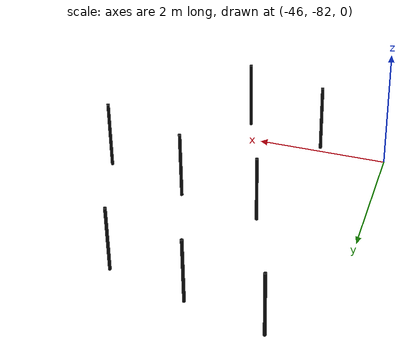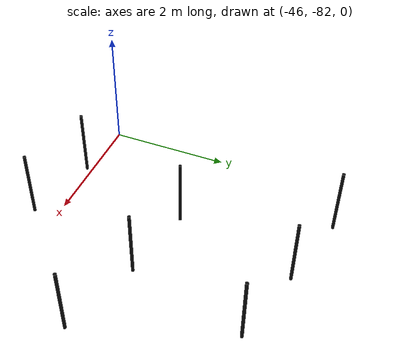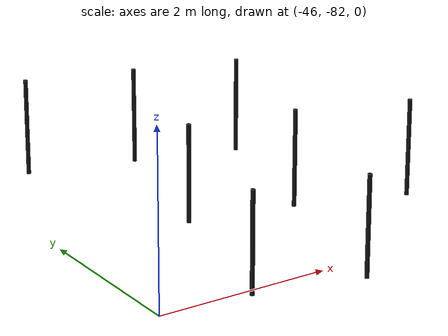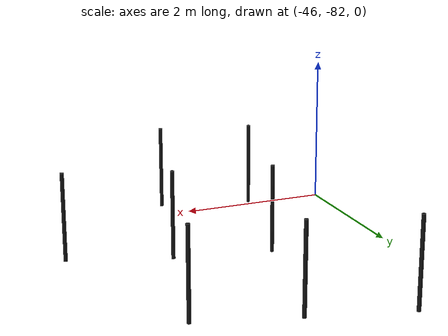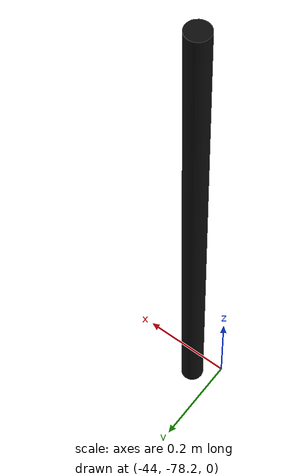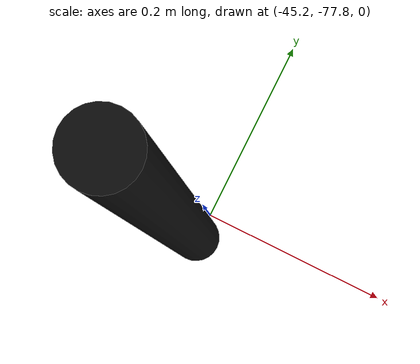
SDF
<sdf version="1.4">
 <world name="default">
  <include><uri>model://sun</uri></include>
  <model name="pole_422">
   <static>1</static>
   <pose>-45.203 -77.828 0.575 0.0 0.0 0.0</pose>
   <link name="link">
    <collision name="collision">
     <geometry><cylinder><length>1.15</length><radius>0.025</radius></cylinder></geometry>
    </collision>
    <visual name="visual">
     <geometry><cylinder><length>1.15</length><radius>0.025</radius></cylinder></geometry>
     <material>
      <script><uri>file://media/materials/scripts/gazebo.material</uri><name>Gazebo/Chrome</name></script>
      <shader type="vertex"><normal_map>__default__</normal_map></shader>
      <emissive>0.1 0.1 0.1 1</emissive>
      <specular>0.01 0.01 0.01 1</specular>
      <ambient>0.5 0.5 0.5 1</ambient>
      <diffuse>0.05 0.05 0.05 1</diffuse>
     </material>
    </visual>
   </link>
  </model>
  <model name="pole_504">
   <static>1</static>
   <pose>-44.954 -82.095 0.575 0.0 0.0 0.0</pose>
   <link name="link">
    <collision name="collision">
     <geometry><cylinder><length>1.15</length><radius>0.025</radius></cylinder></geometry>
    </collision>
    <visual name="visual">
     <geometry><cylinder><length>1.15</length><radius>0.025</radius></cylinder></geometry>
     <material>
      <script><uri>file://media/materials/scripts/gazebo.material</uri><name>Gazebo/Chrome</name></script>
      <shader type="vertex"><normal_map>__default__</normal_map></shader>
      <emissive>0.1 0.1 0.1 1</emissive>
      <specular>0.01 0.01 0.01 1</specular>
      <ambient>0.5 0.5 0.5 1</ambient>
      <diffuse>0.05 0.05 0.05 1</diffuse>
     </material>
    </visual>
   </link>
  </model>
  <model name="pole_505">
   <static>1</static>
   <pose>-44.448 -80.132 0.575 0.0 0.0 0.0</pose>
   <link name="link">
    <collision name="collision">
     <geometry><cylinder><length>1.15</length><radius>0.025</radius></cylinder></geometry>
    </collision>
    <visual name="visual">
     <geometry><cylinder><length>1.15</length><radius>0.025</radius></cylinder></geometry>
     <material>
      <script><uri>file://media/materials/scripts/gazebo.material</uri><name>Gazebo/Chrome</name></script>
      <shader type="vertex"><normal_map>__default__</normal_map></shader>
      <emissive>0.1 0.1 0.1 1</emissive>
      <specular>0.01 0.01 0.01 1</specular>
      <ambient>0.5 0.5 0.5 1</ambient>
      <diffuse>0.05 0.05 0.05 1</diffuse>
     </material>
    </visual>
   </link>
  </model>
  <model name="pole_506">
   <static>1</static>
   <pose>-43.948 -78.157 0.575 0.0 0.0 0.0</pose>
   <link name="link">
    <collision name="collision">
     <geometry><cylinder><length>1.15</length><radius>0.025</radius></cylinder></geometry>
    </collision>
    <visual name="visual">
     <geometry><cylinder><length>1.15</length><radius>0.025</radius></cylinder></geometry>
     <material>
      <script><uri>file://media/materials/scripts/gazebo.material</uri><name>Gazebo/Chrome</name></script>
      <shader type="vertex"><normal_map>__default__</normal_map></shader>
      <emissive>0.1 0.1 0.1 1</emissive>
      <specular>0.01 0.01 0.01 1</specular>
      <ambient>0.5 0.5 0.5 1</ambient>
      <diffuse>0.05 0.05 0.05 1</diffuse>
     </material>
    </visual>
   </link>
  </model>
  <model name="pole_588">
   <static>1</static>
   <pose>-43.728 -82.396 0.575 0.0 0.0 0.0</pose>
   <link name="link">
    <collision name="collision">
     <geometry><cylinder><length>1.15</length><radius>0.025</radius></cylinder></geometry>
    </collision>
    <visual name="visual">
     <geometry><cylinder><length>1.15</length><radius>0.025</radius></cylinder></geometry>
     <material>
      <script><uri>file://media/materials/scripts/gazebo.material</uri><name>Gazebo/Chrome</name></script>
      <shader type="vertex"><normal_map>__default__</normal_map></shader>
      <emissive>0.1 0.1 0.1 1</emissive>
      <specular>0.01 0.01 0.01 1</specular>
      <ambient>0.5 0.5 0.5 1</ambient>
      <diffuse>0.05 0.05 0.05 1</diffuse>
     </material>
    </visual>
   </link>
  </model>
  <model name="pole_589">
   <static>1</static>
   <pose>-43.200 -80.375 0.575 0.0 0.0 0.0</pose>
   <link name="link">
    <collision name="collision">
     <geometry><cylinder><length>1.15</length><radius>0.025</radius></cylinder></geometry>
    </collision>
    <visual name="visual">
     <geometry><cylinder><length>1.15</length><radius>0.025</radius></cylinder></geometry>
     <material>
      <script><uri>file://media/materials/scripts/gazebo.material</uri><name>Gazebo/Chrome</name></script>
      <shader type="vertex"><normal_map>__default__</normal_map></shader>
      <emissive>0.1 0.1 0.1 1</emissive>
      <specular>0.01 0.01 0.01 1</specular>
      <ambient>0.5 0.5 0.5 1</ambient>
      <diffuse>0.05 0.05 0.05 1</diffuse>
     </material>
    </visual>
   </link>
  </model>
  <model name="pole_590">
   <static>1</static>
   <pose>-42.725 -78.500 0.575 0.0 0.0 0.0</pose>
   <link name="link">
    <collision name="collision">
     <geometry><cylinder><length>1.15</length><radius>0.025</radius></cylinder></geometry>
    </collision>
    <visual name="visual">
     <geometry><cylinder><length>1.15</length><radius>0.025</radius></cylinder></geometry>
     <material>
      <script><uri>file://media/materials/scripts/gazebo.material</uri><name>Gazebo/Chrome</name></script>
      <shader type="vertex"><normal_map>__default__</normal_map></shader>
      <emissive>0.1 0.1 0.1 1</emissive>
      <specular>0.01 0.01 0.01 1</specular>
      <ambient>0.5 0.5 0.5 1</ambient>
      <diffuse>0.05 0.05 0.05 1</diffuse>
     </material>
    </visual>
   </link>
  </model>
  <model name="pole_673">
   <static>1</static>
   <pose>-41.925 -80.800 0.575 0.0 0.0 0.0</pose>
   <link name="link">
    <collision name="collision">
     <geometry><cylinder><length>1.15</length><radius>0.025</radius></cylinder></geometry>
    </collision>
    <visual name="visual">
     <geometry><cylinder><length>1.15</length><radius>0.025</radius></cylinder></geometry>
     <material>
      <script><uri>file://media/materials/scripts/gazebo.material</uri><name>Gazebo/Chrome</name></script>
      <shader type="vertex"><normal_map>__default__</normal_map></shader>
      <emissive>0.1 0.1 0.1 1</emissive>
      <specular>0.01 0.01 0.01 1</specular>
      <ambient>0.5 0.5 0.5 1</ambient>
      <diffuse>0.05 0.05 0.05 1</diffuse>
     </material>
    </visual>
   </link>
  </model>
 </world>
</sdf>
